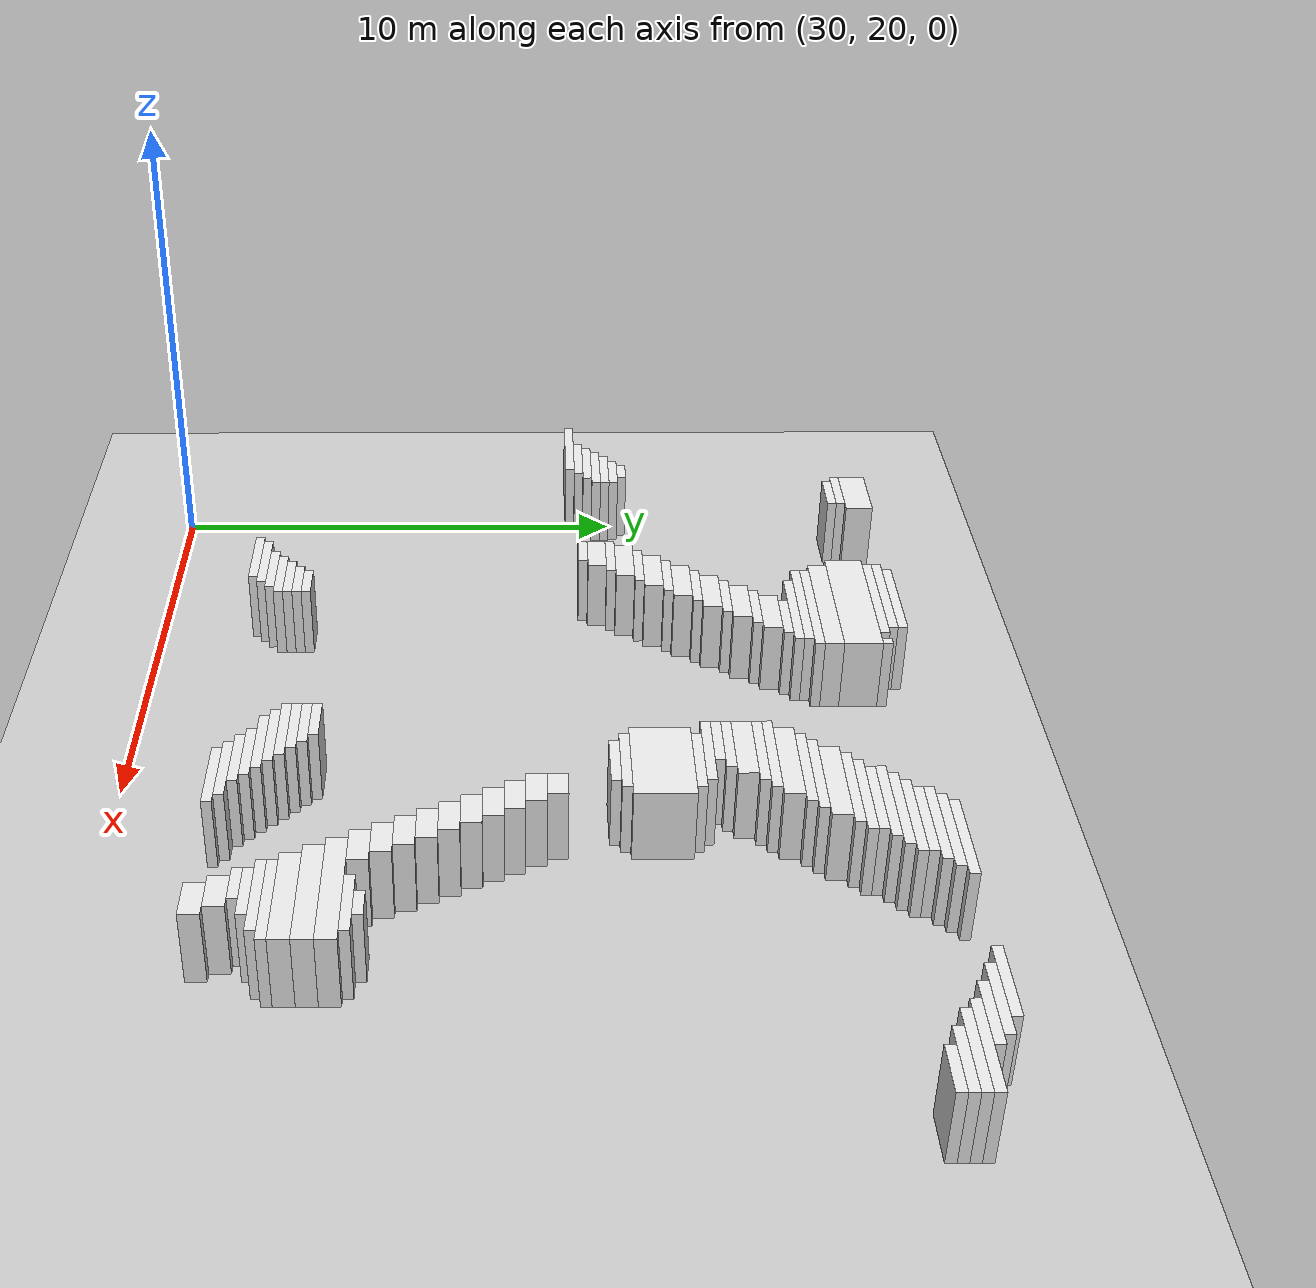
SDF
<sdf version="1.7">
 <world name="default">
  <model name="ground_plane">
   <static>1</static>
   <link name="link">
    <collision name="collision">
     <geometry><plane><normal>0 0 1</normal><size>120 120</size></plane></geometry>
    </collision>
    <visual name="visual">
     <geometry><plane><normal>0 0 1</normal><size>120 120</size></plane></geometry>
     <material>
      <script><uri>file://media/materials/scripts/gazebo.material</uri><name>Gazebo/Grey</name></script>
     </material>
    </visual>
   </link>
  </model>
  <model name="random_complex_03_model">
   <static>1</static>
   <link name="obs_299">
    <pose>35.5000 35.9000 0.8000 0 0 0</pose>
    <collision name="obs_299_col"><geometry><box><size>2.2000 0.2000 1.6000</size></box></geometry></collision>
    <visual name="obs_299_vis">
     <geometry><box><size>2.2000 0.2000 1.6000</size></box></geometry>
     <material>
      <script><uri>file://media/materials/scripts/gazebo.material</uri><name>Gazebo/White</name></script>
     </material>
    </visual>
   </link>
   <link name="obs_300">
    <pose>43.2000 35.9000 0.8000 0 0 0</pose>
    <collision name="obs_300_col"><geometry><box><size>2.0000 0.2000 1.6000</size></box></geometry></collision>
    <visual name="obs_300_vis">
     <geometry><box><size>2.0000 0.2000 1.6000</size></box></geometry>
     <material>
      <script><uri>file://media/materials/scripts/gazebo.material</uri><name>Gazebo/White</name></script>
     </material>
    </visual>
   </link>
   <link name="obs_301">
    <pose>46.8000 35.9000 0.8000 0 0 0</pose>
    <collision name="obs_301_col"><geometry><box><size>1.6000 0.2000 1.6000</size></box></geometry></collision>
    <visual name="obs_301_vis">
     <geometry><box><size>1.6000 0.2000 1.6000</size></box></geometry>
     <material>
      <script><uri>file://media/materials/scripts/gazebo.material</uri><name>Gazebo/White</name></script>
     </material>
    </visual>
   </link>
   <link name="obs_307">
    <pose>35.4000 35.7000 0.8000 0 0 0</pose>
    <collision name="obs_307_col"><geometry><box><size>2.4000 0.2000 1.6000</size></box></geometry></collision>
    <visual name="obs_307_vis">
     <geometry><box><size>2.4000 0.2000 1.6000</size></box></geometry>
     <material>
      <script><uri>file://media/materials/scripts/gazebo.material</uri><name>Gazebo/White</name></script>
     </material>
    </visual>
   </link>
   <link name="obs_308">
    <pose>43.0000 35.7000 0.8000 0 0 0</pose>
    <collision name="obs_308_col"><geometry><box><size>2.0000 0.2000 1.6000</size></box></geometry></collision>
    <visual name="obs_308_vis">
     <geometry><box><size>2.0000 0.2000 1.6000</size></box></geometry>
     <material>
      <script><uri>file://media/materials/scripts/gazebo.material</uri><name>Gazebo/White</name></script>
     </material>
    </visual>
   </link>
   <link name="obs_309">
    <pose>47.2000 35.7000 0.8000 0 0 0</pose>
    <collision name="obs_309_col"><geometry><box><size>1.6000 0.2000 1.6000</size></box></geometry></collision>
    <visual name="obs_309_vis">
     <geometry><box><size>1.6000 0.2000 1.6000</size></box></geometry>
     <material>
      <script><uri>file://media/materials/scripts/gazebo.material</uri><name>Gazebo/White</name></script>
     </material>
    </visual>
   </link>
   <link name="obs_311">
    <pose>31.1000 35.7000 0.8000 0 0 0</pose>
    <collision name="obs_311_col"><geometry><box><size>1.4000 0.6000 1.6000</size></box></geometry></collision>
    <visual name="obs_311_vis">
     <geometry><box><size>1.4000 0.6000 1.6000</size></box></geometry>
     <material>
      <script><uri>file://media/materials/scripts/gazebo.material</uri><name>Gazebo/White</name></script>
     </material>
    </visual>
   </link>
   <link name="obs_314">
    <pose>35.5000 35.5000 0.8000 0 0 0</pose>
    <collision name="obs_314_col"><geometry><box><size>2.6000 0.2000 1.6000</size></box></geometry></collision>
    <visual name="obs_314_vis">
     <geometry><box><size>2.6000 0.2000 1.6000</size></box></geometry>
     <material>
      <script><uri>file://media/materials/scripts/gazebo.material</uri><name>Gazebo/White</name></script>
     </material>
    </visual>
   </link>
   <link name="obs_315">
    <pose>37.1000 35.5000 0.8000 0 0 0</pose>
    <collision name="obs_315_col"><geometry><box><size>0.2000 0.2000 1.6000</size></box></geometry></collision>
    <visual name="obs_315_vis">
     <geometry><box><size>0.2000 0.2000 1.6000</size></box></geometry>
     <material>
      <script><uri>file://media/materials/scripts/gazebo.material</uri><name>Gazebo/White</name></script>
     </material>
    </visual>
   </link>
   <link name="obs_316">
    <pose>42.8000 35.5000 0.8000 0 0 0</pose>
    <collision name="obs_316_col"><geometry><box><size>2.0000 0.2000 1.6000</size></box></geometry></collision>
    <visual name="obs_316_vis">
     <geometry><box><size>2.0000 0.2000 1.6000</size></box></geometry>
     <material>
      <script><uri>file://media/materials/scripts/gazebo.material</uri><name>Gazebo/White</name></script>
     </material>
    </visual>
   </link>
   <link name="obs_317">
    <pose>47.5000 35.5000 0.8000 0 0 0</pose>
    <collision name="obs_317_col"><geometry><box><size>1.4000 0.2000 1.6000</size></box></geometry></collision>
    <visual name="obs_317_vis">
     <geometry><box><size>1.4000 0.2000 1.6000</size></box></geometry>
     <material>
      <script><uri>file://media/materials/scripts/gazebo.material</uri><name>Gazebo/White</name></script>
     </material>
    </visual>
   </link>
   <link name="obs_320">
    <pose>31.0000 35.3000 0.8000 0 0 0</pose>
    <collision name="obs_320_col"><geometry><box><size>1.2000 0.2000 1.6000</size></box></geometry></collision>
    <visual name="obs_320_vis">
     <geometry><box><size>1.2000 0.2000 1.6000</size></box></geometry>
     <material>
      <script><uri>file://media/materials/scripts/gazebo.material</uri><name>Gazebo/White</name></script>
     </material>
    </visual>
   </link>
   <link name="obs_321">
    <pose>42.7000 35.3000 0.8000 0 0 0</pose>
    <collision name="obs_321_col"><geometry><box><size>1.8000 0.2000 1.6000</size></box></geometry></collision>
    <visual name="obs_321_vis">
     <geometry><box><size>1.8000 0.2000 1.6000</size></box></geometry>
     <material>
      <script><uri>file://media/materials/scripts/gazebo.material</uri><name>Gazebo/White</name></script>
     </material>
    </visual>
   </link>
   <link name="obs_322">
    <pose>48.2000 35.3000 0.8000 0 0 0</pose>
    <collision name="obs_322_col"><geometry><box><size>2.0000 0.2000 1.6000</size></box></geometry></collision>
    <visual name="obs_322_vis">
     <geometry><box><size>2.0000 0.2000 1.6000</size></box></geometry>
     <material>
      <script><uri>file://media/materials/scripts/gazebo.material</uri><name>Gazebo/White</name></script>
     </material>
    </visual>
   </link>
   <link name="obs_332">
    <pose>31.1000 35.1000 0.8000 0 0 0</pose>
    <collision name="obs_332_col"><geometry><box><size>1.0000 0.2000 1.6000</size></box></geometry></collision>
    <visual name="obs_332_vis">
     <geometry><box><size>1.0000 0.2000 1.6000</size></box></geometry>
     <material>
      <script><uri>file://media/materials/scripts/gazebo.material</uri><name>Gazebo/White</name></script>
     </material>
    </visual>
   </link>
   <link name="obs_333">
    <pose>42.6000 35.1000 0.8000 0 0 0</pose>
    <collision name="obs_333_col"><geometry><box><size>2.0000 0.2000 1.6000</size></box></geometry></collision>
    <visual name="obs_333_vis">
     <geometry><box><size>2.0000 0.2000 1.6000</size></box></geometry>
     <material>
      <script><uri>file://media/materials/scripts/gazebo.material</uri><name>Gazebo/White</name></script>
     </material>
    </visual>
   </link>
   <link name="obs_334">
    <pose>48.3000 35.1000 0.8000 0 0 0</pose>
    <collision name="obs_334_col"><geometry><box><size>1.8000 0.2000 1.6000</size></box></geometry></collision>
    <visual name="obs_334_vis">
     <geometry><box><size>1.8000 0.2000 1.6000</size></box></geometry>
     <material>
      <script><uri>file://media/materials/scripts/gazebo.material</uri><name>Gazebo/White</name></script>
     </material>
    </visual>
   </link>
   <link name="obs_344">
    <pose>42.4000 34.9000 0.8000 0 0 0</pose>
    <collision name="obs_344_col"><geometry><box><size>2.0000 0.2000 1.6000</size></box></geometry></collision>
    <visual name="obs_344_vis">
     <geometry><box><size>2.0000 0.2000 1.6000</size></box></geometry>
     <material>
      <script><uri>file://media/materials/scripts/gazebo.material</uri><name>Gazebo/White</name></script>
     </material>
    </visual>
   </link>
   <link name="obs_345">
    <pose>48.5000 34.9000 0.8000 0 0 0</pose>
    <collision name="obs_345_col"><geometry><box><size>1.4000 0.2000 1.6000</size></box></geometry></collision>
    <visual name="obs_345_vis">
     <geometry><box><size>1.4000 0.2000 1.6000</size></box></geometry>
     <material>
      <script><uri>file://media/materials/scripts/gazebo.material</uri><name>Gazebo/White</name></script>
     </material>
    </visual>
   </link>
   <link name="obs_346">
    <pose>35.6000 35.0000 0.8000 0 0 0</pose>
    <collision name="obs_346_col"><geometry><box><size>3.2000 0.8000 1.6000</size></box></geometry></collision>
    <visual name="obs_346_vis">
     <geometry><box><size>3.2000 0.8000 1.6000</size></box></geometry>
     <material>
      <script><uri>file://media/materials/scripts/gazebo.material</uri><name>Gazebo/White</name></script>
     </material>
    </visual>
   </link>
   <link name="obs_353">
    <pose>42.2000 34.7000 0.8000 0 0 0</pose>
    <collision name="obs_353_col"><geometry><box><size>2.0000 0.2000 1.6000</size></box></geometry></collision>
    <visual name="obs_353_vis">
     <geometry><box><size>2.0000 0.2000 1.6000</size></box></geometry>
     <material>
      <script><uri>file://media/materials/scripts/gazebo.material</uri><name>Gazebo/White</name></script>
     </material>
    </visual>
   </link>
   <link name="obs_354">
    <pose>48.7000 34.7000 0.8000 0 0 0</pose>
    <collision name="obs_354_col"><geometry><box><size>1.0000 0.2000 1.6000</size></box></geometry></collision>
    <visual name="obs_354_vis">
     <geometry><box><size>1.0000 0.2000 1.6000</size></box></geometry>
     <material>
      <script><uri>file://media/materials/scripts/gazebo.material</uri><name>Gazebo/White</name></script>
     </material>
    </visual>
   </link>
   <link name="obs_363">
    <pose>42.1000 34.5000 0.8000 0 0 0</pose>
    <collision name="obs_363_col"><geometry><box><size>1.8000 0.2000 1.6000</size></box></geometry></collision>
    <visual name="obs_363_vis">
     <geometry><box><size>1.8000 0.2000 1.6000</size></box></geometry>
     <material>
      <script><uri>file://media/materials/scripts/gazebo.material</uri><name>Gazebo/White</name></script>
     </material>
    </visual>
   </link>
   <link name="obs_364">
    <pose>35.7000 34.4000 0.8000 0 0 0</pose>
    <collision name="obs_364_col"><geometry><box><size>3.0000 0.4000 1.6000</size></box></geometry></collision>
    <visual name="obs_364_vis">
     <geometry><box><size>3.0000 0.4000 1.6000</size></box></geometry>
     <material>
      <script><uri>file://media/materials/scripts/gazebo.material</uri><name>Gazebo/White</name></script>
     </material>
    </visual>
   </link>
   <link name="obs_370">
    <pose>42.0000 34.3000 0.8000 0 0 0</pose>
    <collision name="obs_370_col"><geometry><box><size>2.0000 0.2000 1.6000</size></box></geometry></collision>
    <visual name="obs_370_vis">
     <geometry><box><size>2.0000 0.2000 1.6000</size></box></geometry>
     <material>
      <script><uri>file://media/materials/scripts/gazebo.material</uri><name>Gazebo/White</name></script>
     </material>
    </visual>
   </link>
   <link name="obs_378">
    <pose>35.8000 34.1000 0.8000 0 0 0</pose>
    <collision name="obs_378_col"><geometry><box><size>2.8000 0.2000 1.6000</size></box></geometry></collision>
    <visual name="obs_378_vis">
     <geometry><box><size>2.8000 0.2000 1.6000</size></box></geometry>
     <material>
      <script><uri>file://media/materials/scripts/gazebo.material</uri><name>Gazebo/White</name></script>
     </material>
    </visual>
   </link>
   <link name="obs_379">
    <pose>41.8000 34.1000 0.8000 0 0 0</pose>
    <collision name="obs_379_col"><geometry><box><size>2.0000 0.2000 1.6000</size></box></geometry></collision>
    <visual name="obs_379_vis">
     <geometry><box><size>2.0000 0.2000 1.6000</size></box></geometry>
     <material>
      <script><uri>file://media/materials/scripts/gazebo.material</uri><name>Gazebo/White</name></script>
     </material>
    </visual>
   </link>
   <link name="obs_385">
    <pose>35.7000 33.9000 0.8000 0 0 0</pose>
    <collision name="obs_385_col"><geometry><box><size>2.6000 0.2000 1.6000</size></box></geometry></collision>
    <visual name="obs_385_vis">
     <geometry><box><size>2.6000 0.2000 1.6000</size></box></geometry>
     <material>
      <script><uri>file://media/materials/scripts/gazebo.material</uri><name>Gazebo/White</name></script>
     </material>
    </visual>
   </link>
   <link name="obs_388">
    <pose>41.6000 33.8000 0.8000 0 0 0</pose>
    <collision name="obs_388_col"><geometry><box><size>2.0000 0.4000 1.6000</size></box></geometry></collision>
    <visual name="obs_388_vis">
     <geometry><box><size>2.0000 0.4000 1.6000</size></box></geometry>
     <material>
      <script><uri>file://media/materials/scripts/gazebo.material</uri><name>Gazebo/White</name></script>
     </material>
    </visual>
   </link>
   <link name="obs_394">
    <pose>35.9000 33.7000 0.8000 0 0 0</pose>
    <collision name="obs_394_col"><geometry><box><size>2.2000 0.2000 1.6000</size></box></geometry></collision>
    <visual name="obs_394_vis">
     <geometry><box><size>2.2000 0.2000 1.6000</size></box></geometry>
     <material>
      <script><uri>file://media/materials/scripts/gazebo.material</uri><name>Gazebo/White</name></script>
     </material>
    </visual>
   </link>
   <link name="obs_402">
    <pose>36.2000 33.5000 0.8000 0 0 0</pose>
    <collision name="obs_402_col"><geometry><box><size>1.2000 0.2000 1.6000</size></box></geometry></collision>
    <visual name="obs_402_vis">
     <geometry><box><size>1.2000 0.2000 1.6000</size></box></geometry>
     <material>
      <script><uri>file://media/materials/scripts/gazebo.material</uri><name>Gazebo/White</name></script>
     </material>
    </visual>
   </link>
   <link name="obs_403">
    <pose>41.4000 33.5000 0.8000 0 0 0</pose>
    <collision name="obs_403_col"><geometry><box><size>2.0000 0.2000 1.6000</size></box></geometry></collision>
    <visual name="obs_403_vis">
     <geometry><box><size>2.0000 0.2000 1.6000</size></box></geometry>
     <material>
      <script><uri>file://media/materials/scripts/gazebo.material</uri><name>Gazebo/White</name></script>
     </material>
    </visual>
   </link>
   <link name="obs_410">
    <pose>41.2000 33.3000 0.8000 0 0 0</pose>
    <collision name="obs_410_col"><geometry><box><size>2.0000 0.2000 1.6000</size></box></geometry></collision>
    <visual name="obs_410_vis">
     <geometry><box><size>2.0000 0.2000 1.6000</size></box></geometry>
     <material>
      <script><uri>file://media/materials/scripts/gazebo.material</uri><name>Gazebo/White</name></script>
     </material>
    </visual>
   </link>
   <link name="obs_413">
    <pose>36.0000 33.2000 0.8000 0 0 0</pose>
    <collision name="obs_413_col"><geometry><box><size>1.2000 0.4000 1.6000</size></box></geometry></collision>
    <visual name="obs_413_vis">
     <geometry><box><size>1.2000 0.4000 1.6000</size></box></geometry>
     <material>
      <script><uri>file://media/materials/scripts/gazebo.material</uri><name>Gazebo/White</name></script>
     </material>
    </visual>
   </link>
   <link name="obs_420">
    <pose>41.0000 33.0000 0.8000 0 0 0</pose>
    <collision name="obs_420_col"><geometry><box><size>2.0000 0.4000 1.6000</size></box></geometry></collision>
    <visual name="obs_420_vis">
     <geometry><box><size>2.0000 0.4000 1.6000</size></box></geometry>
     <material>
      <script><uri>file://media/materials/scripts/gazebo.material</uri><name>Gazebo/White</name></script>
     </material>
    </visual>
   </link>
   <link name="obs_425">
    <pose>35.8000 32.9000 0.8000 0 0 0</pose>
    <collision name="obs_425_col"><geometry><box><size>1.2000 0.2000 1.6000</size></box></geometry></collision>
    <visual name="obs_425_vis">
     <geometry><box><size>1.2000 0.2000 1.6000</size></box></geometry>
     <material>
      <script><uri>file://media/materials/scripts/gazebo.material</uri><name>Gazebo/White</name></script>
     </material>
    </visual>
   </link>
   <link name="obs_435">
    <pose>40.8000 32.7000 0.8000 0 0 0</pose>
    <collision name="obs_435_col"><geometry><box><size>2.0000 0.2000 1.6000</size></box></geometry></collision>
    <visual name="obs_435_vis">
     <geometry><box><size>2.0000 0.2000 1.6000</size></box></geometry>
     <material>
      <script><uri>file://media/materials/scripts/gazebo.material</uri><name>Gazebo/White</name></script>
     </material>
    </visual>
   </link>
   <link name="obs_437">
    <pose>35.6000 32.6000 0.8000 0 0 0</pose>
    <collision name="obs_437_col"><geometry><box><size>1.2000 0.4000 1.6000</size></box></geometry></collision>
    <visual name="obs_437_vis">
     <geometry><box><size>1.2000 0.4000 1.6000</size></box></geometry>
     <material>
      <script><uri>file://media/materials/scripts/gazebo.material</uri><name>Gazebo/White</name></script>
     </material>
    </visual>
   </link>
   <link name="obs_444">
    <pose>40.7000 32.5000 0.8000 0 0 0</pose>
    <collision name="obs_444_col"><geometry><box><size>1.8000 0.2000 1.6000</size></box></geometry></collision>
    <visual name="obs_444_vis">
     <geometry><box><size>1.8000 0.2000 1.6000</size></box></geometry>
     <material>
      <script><uri>file://media/materials/scripts/gazebo.material</uri><name>Gazebo/White</name></script>
     </material>
    </visual>
   </link>
   <link name="obs_452">
    <pose>35.4000 32.3000 0.8000 0 0 0</pose>
    <collision name="obs_452_col"><geometry><box><size>1.2000 0.2000 1.6000</size></box></geometry></collision>
    <visual name="obs_452_vis">
     <geometry><box><size>1.2000 0.2000 1.6000</size></box></geometry>
     <material>
      <script><uri>file://media/materials/scripts/gazebo.material</uri><name>Gazebo/White</name></script>
     </material>
    </visual>
   </link>
   <link name="obs_454">
    <pose>40.6000 32.2000 0.8000 0 0 0</pose>
    <collision name="obs_454_col"><geometry><box><size>1.6000 0.4000 1.6000</size></box></geometry></collision>
    <visual name="obs_454_vis">
     <geometry><box><size>1.6000 0.4000 1.6000</size></box></geometry>
     <material>
      <script><uri>file://media/materials/scripts/gazebo.material</uri><name>Gazebo/White</name></script>
     </material>
    </visual>
   </link>
   <link name="obs_462">
    <pose>35.2000 32.0000 0.8000 0 0 0</pose>
    <collision name="obs_462_col"><geometry><box><size>1.2000 0.4000 1.6000</size></box></geometry></collision>
    <visual name="obs_462_vis">
     <geometry><box><size>1.2000 0.4000 1.6000</size></box></geometry>
     <material>
      <script><uri>file://media/materials/scripts/gazebo.material</uri><name>Gazebo/White</name></script>
     </material>
    </visual>
   </link>
   <link name="obs_470">
    <pose>40.5000 31.9000 0.8000 0 0 0</pose>
    <collision name="obs_470_col"><geometry><box><size>1.4000 0.2000 1.6000</size></box></geometry></collision>
    <visual name="obs_470_vis">
     <geometry><box><size>1.4000 0.2000 1.6000</size></box></geometry>
     <material>
      <script><uri>file://media/materials/scripts/gazebo.material</uri><name>Gazebo/White</name></script>
     </material>
    </visual>
   </link>
   <link name="obs_478">
    <pose>35.0000 31.7000 0.8000 0 0 0</pose>
    <collision name="obs_478_col"><geometry><box><size>1.2000 0.2000 1.6000</size></box></geometry></collision>
    <visual name="obs_478_vis">
     <geometry><box><size>1.2000 0.2000 1.6000</size></box></geometry>
     <material>
      <script><uri>file://media/materials/scripts/gazebo.material</uri><name>Gazebo/White</name></script>
     </material>
    </visual>
   </link>
   <link name="obs_479">
    <pose>40.4000 31.7000 0.8000 0 0 0</pose>
    <collision name="obs_479_col"><geometry><box><size>1.2000 0.2000 1.6000</size></box></geometry></collision>
    <visual name="obs_479_vis">
     <geometry><box><size>1.2000 0.2000 1.6000</size></box></geometry>
     <material>
      <script><uri>file://media/materials/scripts/gazebo.material</uri><name>Gazebo/White</name></script>
     </material>
    </visual>
   </link>
   <link name="obs_486">
    <pose>40.7000 31.5000 0.8000 0 0 0</pose>
    <collision name="obs_486_col"><geometry><box><size>1.8000 0.2000 1.6000</size></box></geometry></collision>
    <visual name="obs_486_vis">
     <geometry><box><size>1.8000 0.2000 1.6000</size></box></geometry>
     <material>
      <script><uri>file://media/materials/scripts/gazebo.material</uri><name>Gazebo/White</name></script>
     </material>
    </visual>
   </link>
   <link name="obs_489">
    <pose>34.8000 31.4000 0.8000 0 0 0</pose>
    <collision name="obs_489_col"><geometry><box><size>1.2000 0.4000 1.6000</size></box></geometry></collision>
    <visual name="obs_489_vis">
     <geometry><box><size>1.2000 0.4000 1.6000</size></box></geometry>
     <material>
      <script><uri>file://media/materials/scripts/gazebo.material</uri><name>Gazebo/White</name></script>
     </material>
    </visual>
   </link>
   <link name="obs_493">
    <pose>41.0000 31.3000 0.8000 0 0 0</pose>
    <collision name="obs_493_col"><geometry><box><size>1.6000 0.2000 1.6000</size></box></geometry></collision>
    <visual name="obs_493_vis">
     <geometry><box><size>1.6000 0.2000 1.6000</size></box></geometry>
     <material>
      <script><uri>file://media/materials/scripts/gazebo.material</uri><name>Gazebo/White</name></script>
     </material>
    </visual>
   </link>
   <link name="obs_498">
    <pose>34.6000 31.1000 0.8000 0 0 0</pose>
    <collision name="obs_498_col"><geometry><box><size>1.2000 0.2000 1.6000</size></box></geometry></collision>
    <visual name="obs_498_vis">
     <geometry><box><size>1.2000 0.2000 1.6000</size></box></geometry>
     <material>
      <script><uri>file://media/materials/scripts/gazebo.material</uri><name>Gazebo/White</name></script>
     </material>
    </visual>
   </link>
   <link name="obs_507">
    <pose>34.4000 30.8000 0.8000 0 0 0</pose>
    <collision name="obs_507_col"><geometry><box><size>1.2000 0.4000 1.6000</size></box></geometry></collision>
    <visual name="obs_507_vis">
     <geometry><box><size>1.2000 0.4000 1.6000</size></box></geometry>
     <material>
      <script><uri>file://media/materials/scripts/gazebo.material</uri><name>Gazebo/White</name></script>
     </material>
    </visual>
   </link>
   <link name="obs_521">
    <pose>34.2000 30.5000 0.8000 0 0 0</pose>
    <collision name="obs_521_col"><geometry><box><size>1.2000 0.2000 1.6000</size></box></geometry></collision>
    <visual name="obs_521_vis">
     <geometry><box><size>1.2000 0.2000 1.6000</size></box></geometry>
     <material>
      <script><uri>file://media/materials/scripts/gazebo.material</uri><name>Gazebo/White</name></script>
     </material>
    </visual>
   </link>
   <link name="obs_528">
    <pose>30.1000 30.3000 0.8000 0 0 0</pose>
    <collision name="obs_528_col"><geometry><box><size>0.6000 0.2000 1.6000</size></box></geometry></collision>
    <visual name="obs_528_vis">
     <geometry><box><size>0.6000 0.2000 1.6000</size></box></geometry>
     <material>
      <script><uri>file://media/materials/scripts/gazebo.material</uri><name>Gazebo/White</name></script>
     </material>
    </visual>
   </link>
   <link name="obs_529">
    <pose>41.0000 30.6000 0.8000 0 0 0</pose>
    <collision name="obs_529_col"><geometry><box><size>2.0000 1.2000 1.6000</size></box></geometry></collision>
    <visual name="obs_529_vis">
     <geometry><box><size>2.0000 1.2000 1.6000</size></box></geometry>
     <material>
      <script><uri>file://media/materials/scripts/gazebo.material</uri><name>Gazebo/White</name></script>
     </material>
    </visual>
   </link>
   <link name="obs_531">
    <pose>34.0000 30.2000 0.8000 0 0 0</pose>
    <collision name="obs_531_col"><geometry><box><size>1.2000 0.4000 1.6000</size></box></geometry></collision>
    <visual name="obs_531_vis">
     <geometry><box><size>1.2000 0.4000 1.6000</size></box></geometry>
     <material>
      <script><uri>file://media/materials/scripts/gazebo.material</uri><name>Gazebo/White</name></script>
     </material>
    </visual>
   </link>
   <link name="obs_538">
    <pose>30.1000 30.1000 0.8000 0 0 0</pose>
    <collision name="obs_538_col"><geometry><box><size>1.0000 0.2000 1.6000</size></box></geometry></collision>
    <visual name="obs_538_vis">
     <geometry><box><size>1.0000 0.2000 1.6000</size></box></geometry>
     <material>
      <script><uri>file://media/materials/scripts/gazebo.material</uri><name>Gazebo/White</name></script>
     </material>
    </visual>
   </link>
   <link name="obs_544">
    <pose>30.0000 29.9000 0.8000 0 0 0</pose>
    <collision name="obs_544_col"><geometry><box><size>1.2000 0.2000 1.6000</size></box></geometry></collision>
    <visual name="obs_544_vis">
     <geometry><box><size>1.2000 0.2000 1.6000</size></box></geometry>
     <material>
      <script><uri>file://media/materials/scripts/gazebo.material</uri><name>Gazebo/White</name></script>
     </material>
    </visual>
   </link>
   <link name="obs_545">
    <pose>33.8000 29.9000 0.8000 0 0 0</pose>
    <collision name="obs_545_col"><geometry><box><size>1.2000 0.2000 1.6000</size></box></geometry></collision>
    <visual name="obs_545_vis">
     <geometry><box><size>1.2000 0.2000 1.6000</size></box></geometry>
     <material>
      <script><uri>file://media/materials/scripts/gazebo.material</uri><name>Gazebo/White</name></script>
     </material>
    </visual>
   </link>
   <link name="obs_546">
    <pose>41.0000 29.9000 0.8000 0 0 0</pose>
    <collision name="obs_546_col"><geometry><box><size>1.6000 0.2000 1.6000</size></box></geometry></collision>
    <visual name="obs_546_vis">
     <geometry><box><size>1.6000 0.2000 1.6000</size></box></geometry>
     <material>
      <script><uri>file://media/materials/scripts/gazebo.material</uri><name>Gazebo/White</name></script>
     </material>
    </visual>
   </link>
   <link name="obs_554">
    <pose>29.9000 29.7000 0.8000 0 0 0</pose>
    <collision name="obs_554_col"><geometry><box><size>1.4000 0.2000 1.6000</size></box></geometry></collision>
    <visual name="obs_554_vis">
     <geometry><box><size>1.4000 0.2000 1.6000</size></box></geometry>
     <material>
      <script><uri>file://media/materials/scripts/gazebo.material</uri><name>Gazebo/White</name></script>
     </material>
    </visual>
   </link>
   <link name="obs_555">
    <pose>41.0000 29.7000 0.8000 0 0 0</pose>
    <collision name="obs_555_col"><geometry><box><size>1.2000 0.2000 1.6000</size></box></geometry></collision>
    <visual name="obs_555_vis">
     <geometry><box><size>1.2000 0.2000 1.6000</size></box></geometry>
     <material>
      <script><uri>file://media/materials/scripts/gazebo.material</uri><name>Gazebo/White</name></script>
     </material>
    </visual>
   </link>
   <link name="obs_556">
    <pose>33.7000 29.6000 0.8000 0 0 0</pose>
    <collision name="obs_556_col"><geometry><box><size>1.0000 0.4000 1.6000</size></box></geometry></collision>
    <visual name="obs_556_vis">
     <geometry><box><size>1.0000 0.4000 1.6000</size></box></geometry>
     <material>
      <script><uri>file://media/materials/scripts/gazebo.material</uri><name>Gazebo/White</name></script>
     </material>
    </visual>
   </link>
   <link name="obs_564">
    <pose>29.7000 29.5000 0.8000 0 0 0</pose>
    <collision name="obs_564_col"><geometry><box><size>1.4000 0.2000 1.6000</size></box></geometry></collision>
    <visual name="obs_564_vis">
     <geometry><box><size>1.4000 0.2000 1.6000</size></box></geometry>
     <material>
      <script><uri>file://media/materials/scripts/gazebo.material</uri><name>Gazebo/White</name></script>
     </material>
    </visual>
   </link>
   <link name="obs_570">
    <pose>29.5000 29.3000 0.8000 0 0 0</pose>
    <collision name="obs_570_col"><geometry><box><size>1.4000 0.2000 1.6000</size></box></geometry></collision>
    <visual name="obs_570_vis">
     <geometry><box><size>1.4000 0.2000 1.6000</size></box></geometry>
     <material>
      <script><uri>file://media/materials/scripts/gazebo.material</uri><name>Gazebo/White</name></script>
     </material>
    </visual>
   </link>
   <link name="obs_571">
    <pose>33.6000 29.3000 0.8000 0 0 0</pose>
    <collision name="obs_571_col"><geometry><box><size>0.8000 0.2000 1.6000</size></box></geometry></collision>
    <visual name="obs_571_vis">
     <geometry><box><size>0.8000 0.2000 1.6000</size></box></geometry>
     <material>
      <script><uri>file://media/materials/scripts/gazebo.material</uri><name>Gazebo/White</name></script>
     </material>
    </visual>
   </link>
   <link name="obs_579">
    <pose>29.0000 29.1000 0.8000 0 0 0</pose>
    <collision name="obs_579_col"><geometry><box><size>2.0000 0.2000 1.6000</size></box></geometry></collision>
    <visual name="obs_579_vis">
     <geometry><box><size>2.0000 0.2000 1.6000</size></box></geometry>
     <material>
      <script><uri>file://media/materials/scripts/gazebo.material</uri><name>Gazebo/White</name></script>
     </material>
    </visual>
   </link>
   <link name="obs_595">
    <pose>41.7000 28.6000 0.8000 0 0 0</pose>
    <collision name="obs_595_col"><geometry><box><size>0.6000 0.4000 1.6000</size></box></geometry></collision>
    <visual name="obs_595_vis">
     <geometry><box><size>0.6000 0.4000 1.6000</size></box></geometry>
     <material>
      <script><uri>file://media/materials/scripts/gazebo.material</uri><name>Gazebo/White</name></script>
     </material>
    </visual>
   </link>
   <link name="obs_607">
    <pose>41.8000 28.2000 0.8000 0 0 0</pose>
    <collision name="obs_607_col"><geometry><box><size>0.8000 0.4000 1.6000</size></box></geometry></collision>
    <visual name="obs_607_vis">
     <geometry><box><size>0.8000 0.4000 1.6000</size></box></geometry>
     <material>
      <script><uri>file://media/materials/scripts/gazebo.material</uri><name>Gazebo/White</name></script>
     </material>
    </visual>
   </link>
   <link name="obs_623">
    <pose>42.0000 27.8000 0.8000 0 0 0</pose>
    <collision name="obs_623_col"><geometry><box><size>0.8000 0.4000 1.6000</size></box></geometry></collision>
    <visual name="obs_623_vis">
     <geometry><box><size>0.8000 0.4000 1.6000</size></box></geometry>
     <material>
      <script><uri>file://media/materials/scripts/gazebo.material</uri><name>Gazebo/White</name></script>
     </material>
    </visual>
   </link>
   <link name="obs_635">
    <pose>42.2000 27.4000 0.8000 0 0 0</pose>
    <collision name="obs_635_col"><geometry><box><size>0.8000 0.4000 1.6000</size></box></geometry></collision>
    <visual name="obs_635_vis">
     <geometry><box><size>0.8000 0.4000 1.6000</size></box></geometry>
     <material>
      <script><uri>file://media/materials/scripts/gazebo.material</uri><name>Gazebo/White</name></script>
     </material>
    </visual>
   </link>
   <link name="obs_652">
    <pose>42.4000 27.0000 0.8000 0 0 0</pose>
    <collision name="obs_652_col"><geometry><box><size>0.8000 0.4000 1.6000</size></box></geometry></collision>
    <visual name="obs_652_vis">
     <geometry><box><size>0.8000 0.4000 1.6000</size></box></geometry>
     <material>
      <script><uri>file://media/materials/scripts/gazebo.material</uri><name>Gazebo/White</name></script>
     </material>
    </visual>
   </link>
   <link name="obs_672">
    <pose>42.6000 26.6000 0.8000 0 0 0</pose>
    <collision name="obs_672_col"><geometry><box><size>0.8000 0.4000 1.6000</size></box></geometry></collision>
    <visual name="obs_672_vis">
     <geometry><box><size>0.8000 0.4000 1.6000</size></box></geometry>
     <material>
      <script><uri>file://media/materials/scripts/gazebo.material</uri><name>Gazebo/White</name></script>
     </material>
    </visual>
   </link>
   <link name="obs_686">
    <pose>42.8000 26.2000 0.8000 0 0 0</pose>
    <collision name="obs_686_col"><geometry><box><size>0.8000 0.4000 1.6000</size></box></geometry></collision>
    <visual name="obs_686_vis">
     <geometry><box><size>0.8000 0.4000 1.6000</size></box></geometry>
     <material>
      <script><uri>file://media/materials/scripts/gazebo.material</uri><name>Gazebo/White</name></script>
     </material>
    </visual>
   </link>
   <link name="obs_701">
    <pose>43.0000 25.8000 0.8000 0 0 0</pose>
    <collision name="obs_701_col"><geometry><box><size>0.8000 0.4000 1.6000</size></box></geometry></collision>
    <visual name="obs_701_vis">
     <geometry><box><size>0.8000 0.4000 1.6000</size></box></geometry>
     <material>
      <script><uri>file://media/materials/scripts/gazebo.material</uri><name>Gazebo/White</name></script>
     </material>
    </visual>
   </link>
   <link name="obs_716">
    <pose>43.2000 25.4000 0.8000 0 0 0</pose>
    <collision name="obs_716_col"><geometry><box><size>0.8000 0.4000 1.6000</size></box></geometry></collision>
    <visual name="obs_716_vis">
     <geometry><box><size>0.8000 0.4000 1.6000</size></box></geometry>
     <material>
      <script><uri>file://media/materials/scripts/gazebo.material</uri><name>Gazebo/White</name></script>
     </material>
    </visual>
   </link>
   <link name="obs_727">
    <pose>44.9000 25.1000 0.8000 0 0 0</pose>
    <collision name="obs_727_col"><geometry><box><size>0.6000 0.2000 1.6000</size></box></geometry></collision>
    <visual name="obs_727_vis">
     <geometry><box><size>0.6000 0.2000 1.6000</size></box></geometry>
     <material>
      <script><uri>file://media/materials/scripts/gazebo.material</uri><name>Gazebo/White</name></script>
     </material>
    </visual>
   </link>
   <link name="obs_733">
    <pose>43.4000 25.0000 0.8000 0 0 0</pose>
    <collision name="obs_733_col"><geometry><box><size>0.8000 0.4000 1.6000</size></box></geometry></collision>
    <visual name="obs_733_vis">
     <geometry><box><size>0.8000 0.4000 1.6000</size></box></geometry>
     <material>
      <script><uri>file://media/materials/scripts/gazebo.material</uri><name>Gazebo/White</name></script>
     </material>
    </visual>
   </link>
   <link name="obs_737">
    <pose>44.9000 24.9000 0.8000 0 0 0</pose>
    <collision name="obs_737_col"><geometry><box><size>1.4000 0.2000 1.6000</size></box></geometry></collision>
    <visual name="obs_737_vis">
     <geometry><box><size>1.4000 0.2000 1.6000</size></box></geometry>
     <material>
      <script><uri>file://media/materials/scripts/gazebo.material</uri><name>Gazebo/White</name></script>
     </material>
    </visual>
   </link>
   <link name="obs_747">
    <pose>44.5000 24.6000 0.8000 0 0 0</pose>
    <collision name="obs_747_col"><geometry><box><size>2.6000 0.4000 1.6000</size></box></geometry></collision>
    <visual name="obs_747_vis">
     <geometry><box><size>2.6000 0.4000 1.6000</size></box></geometry>
     <material>
      <script><uri>file://media/materials/scripts/gazebo.material</uri><name>Gazebo/White</name></script>
     </material>
    </visual>
   </link>
   <link name="obs_760">
    <pose>44.6000 24.2000 0.8000 0 0 0</pose>
    <collision name="obs_760_col"><geometry><box><size>2.4000 0.4000 1.6000</size></box></geometry></collision>
    <visual name="obs_760_vis">
     <geometry><box><size>2.4000 0.4000 1.6000</size></box></geometry>
     <material>
      <script><uri>file://media/materials/scripts/gazebo.material</uri><name>Gazebo/White</name></script>
     </material>
    </visual>
   </link>
   <link name="obs_773">
    <pose>39.7000 23.9000 0.8000 0 0 0</pose>
    <collision name="obs_773_col"><geometry><box><size>1.0000 0.2000 1.6000</size></box></geometry></collision>
    <visual name="obs_773_vis">
     <geometry><box><size>1.0000 0.2000 1.6000</size></box></geometry>
     <material>
      <script><uri>file://media/materials/scripts/gazebo.material</uri><name>Gazebo/White</name></script>
     </material>
    </visual>
   </link>
   <link name="obs_777">
    <pose>44.7000 23.8000 0.8000 0 0 0</pose>
    <collision name="obs_777_col"><geometry><box><size>2.2000 0.4000 1.6000</size></box></geometry></collision>
    <visual name="obs_777_vis">
     <geometry><box><size>2.2000 0.4000 1.6000</size></box></geometry>
     <material>
      <script><uri>file://media/materials/scripts/gazebo.material</uri><name>Gazebo/White</name></script>
     </material>
    </visual>
   </link>
   <link name="obs_781">
    <pose>39.8000 23.7000 0.8000 0 0 0</pose>
    <collision name="obs_781_col"><geometry><box><size>1.2000 0.2000 1.6000</size></box></geometry></collision>
    <visual name="obs_781_vis">
     <geometry><box><size>1.2000 0.2000 1.6000</size></box></geometry>
     <material>
      <script><uri>file://media/materials/scripts/gazebo.material</uri><name>Gazebo/White</name></script>
     </material>
    </visual>
   </link>
   <link name="obs_786">
    <pose>39.9000 23.5000 0.8000 0 0 0</pose>
    <collision name="obs_786_col"><geometry><box><size>1.4000 0.2000 1.6000</size></box></geometry></collision>
    <visual name="obs_786_vis">
     <geometry><box><size>1.4000 0.2000 1.6000</size></box></geometry>
     <material>
      <script><uri>file://media/materials/scripts/gazebo.material</uri><name>Gazebo/White</name></script>
     </material>
    </visual>
   </link>
   <link name="obs_787">
    <pose>44.8000 23.5000 0.8000 0 0 0</pose>
    <collision name="obs_787_col"><geometry><box><size>2.0000 0.2000 1.6000</size></box></geometry></collision>
    <visual name="obs_787_vis">
     <geometry><box><size>2.0000 0.2000 1.6000</size></box></geometry>
     <material>
      <script><uri>file://media/materials/scripts/gazebo.material</uri><name>Gazebo/White</name></script>
     </material>
    </visual>
   </link>
   <link name="obs_794">
    <pose>34.8000 23.3000 0.8000 0 0 0</pose>
    <collision name="obs_794_col"><geometry><box><size>0.8000 0.2000 1.6000</size></box></geometry></collision>
    <visual name="obs_794_vis">
     <geometry><box><size>0.8000 0.2000 1.6000</size></box></geometry>
     <material>
      <script><uri>file://media/materials/scripts/gazebo.material</uri><name>Gazebo/White</name></script>
     </material>
    </visual>
   </link>
   <link name="obs_795">
    <pose>40.0000 23.3000 0.8000 0 0 0</pose>
    <collision name="obs_795_col"><geometry><box><size>1.6000 0.2000 1.6000</size></box></geometry></collision>
    <visual name="obs_795_vis">
     <geometry><box><size>1.6000 0.2000 1.6000</size></box></geometry>
     <material>
      <script><uri>file://media/materials/scripts/gazebo.material</uri><name>Gazebo/White</name></script>
     </material>
    </visual>
   </link>
   <link name="obs_796">
    <pose>44.7000 23.3000 0.8000 0 0 0</pose>
    <collision name="obs_796_col"><geometry><box><size>1.8000 0.2000 1.6000</size></box></geometry></collision>
    <visual name="obs_796_vis">
     <geometry><box><size>1.8000 0.2000 1.6000</size></box></geometry>
     <material>
      <script><uri>file://media/materials/scripts/gazebo.material</uri><name>Gazebo/White</name></script>
     </material>
    </visual>
   </link>
   <link name="obs_803">
    <pose>34.7000 23.1000 0.8000 0 0 0</pose>
    <collision name="obs_803_col"><geometry><box><size>1.0000 0.2000 1.6000</size></box></geometry></collision>
    <visual name="obs_803_vis">
     <geometry><box><size>1.0000 0.2000 1.6000</size></box></geometry>
     <material>
      <script><uri>file://media/materials/scripts/gazebo.material</uri><name>Gazebo/White</name></script>
     </material>
    </visual>
   </link>
   <link name="obs_804">
    <pose>40.2000 23.1000 0.8000 0 0 0</pose>
    <collision name="obs_804_col"><geometry><box><size>1.6000 0.2000 1.6000</size></box></geometry></collision>
    <visual name="obs_804_vis">
     <geometry><box><size>1.6000 0.2000 1.6000</size></box></geometry>
     <material>
      <script><uri>file://media/materials/scripts/gazebo.material</uri><name>Gazebo/White</name></script>
     </material>
    </visual>
   </link>
   <link name="obs_805">
    <pose>44.6000 23.1000 0.8000 0 0 0</pose>
    <collision name="obs_805_col"><geometry><box><size>1.2000 0.2000 1.6000</size></box></geometry></collision>
    <visual name="obs_805_vis">
     <geometry><box><size>1.2000 0.2000 1.6000</size></box></geometry>
     <material>
      <script><uri>file://media/materials/scripts/gazebo.material</uri><name>Gazebo/White</name></script>
     </material>
    </visual>
   </link>
   <link name="obs_812">
    <pose>34.6000 22.9000 0.8000 0 0 0</pose>
    <collision name="obs_812_col"><geometry><box><size>1.2000 0.2000 1.6000</size></box></geometry></collision>
    <visual name="obs_812_vis">
     <geometry><box><size>1.2000 0.2000 1.6000</size></box></geometry>
     <material>
      <script><uri>file://media/materials/scripts/gazebo.material</uri><name>Gazebo/White</name></script>
     </material>
    </visual>
   </link>
   <link name="obs_813">
    <pose>40.4000 22.9000 0.8000 0 0 0</pose>
    <collision name="obs_813_col"><geometry><box><size>1.6000 0.2000 1.6000</size></box></geometry></collision>
    <visual name="obs_813_vis">
     <geometry><box><size>1.6000 0.2000 1.6000</size></box></geometry>
     <material>
      <script><uri>file://media/materials/scripts/gazebo.material</uri><name>Gazebo/White</name></script>
     </material>
    </visual>
   </link>
   <link name="obs_814">
    <pose>44.4000 22.9000 0.8000 0 0 0</pose>
    <collision name="obs_814_col"><geometry><box><size>0.8000 0.2000 1.6000</size></box></geometry></collision>
    <visual name="obs_814_vis">
     <geometry><box><size>0.8000 0.2000 1.6000</size></box></geometry>
     <material>
      <script><uri>file://media/materials/scripts/gazebo.material</uri><name>Gazebo/White</name></script>
     </material>
    </visual>
   </link>
   <link name="obs_824">
    <pose>34.5000 22.7000 0.8000 0 0 0</pose>
    <collision name="obs_824_col"><geometry><box><size>1.4000 0.2000 1.6000</size></box></geometry></collision>
    <visual name="obs_824_vis">
     <geometry><box><size>1.4000 0.2000 1.6000</size></box></geometry>
     <material>
      <script><uri>file://media/materials/scripts/gazebo.material</uri><name>Gazebo/White</name></script>
     </material>
    </visual>
   </link>
   <link name="obs_825">
    <pose>40.7000 22.7000 0.8000 0 0 0</pose>
    <collision name="obs_825_col"><geometry><box><size>1.4000 0.2000 1.6000</size></box></geometry></collision>
    <visual name="obs_825_vis">
     <geometry><box><size>1.4000 0.2000 1.6000</size></box></geometry>
     <material>
      <script><uri>file://media/materials/scripts/gazebo.material</uri><name>Gazebo/White</name></script>
     </material>
    </visual>
   </link>
   <link name="obs_827">
    <pose>44.6000 22.6000 0.8000 0 0 0</pose>
    <collision name="obs_827_col"><geometry><box><size>0.8000 0.4000 1.6000</size></box></geometry></collision>
    <visual name="obs_827_vis">
     <geometry><box><size>0.8000 0.4000 1.6000</size></box></geometry>
     <material>
      <script><uri>file://media/materials/scripts/gazebo.material</uri><name>Gazebo/White</name></script>
     </material>
    </visual>
   </link>
   <link name="obs_832">
    <pose>34.3000 22.5000 0.8000 0 0 0</pose>
    <collision name="obs_832_col"><geometry><box><size>1.4000 0.2000 1.6000</size></box></geometry></collision>
    <visual name="obs_832_vis">
     <geometry><box><size>1.4000 0.2000 1.6000</size></box></geometry>
     <material>
      <script><uri>file://media/materials/scripts/gazebo.material</uri><name>Gazebo/White</name></script>
     </material>
    </visual>
   </link>
   <link name="obs_833">
    <pose>40.9000 22.5000 0.8000 0 0 0</pose>
    <collision name="obs_833_col"><geometry><box><size>1.4000 0.2000 1.6000</size></box></geometry></collision>
    <visual name="obs_833_vis">
     <geometry><box><size>1.4000 0.2000 1.6000</size></box></geometry>
     <material>
      <script><uri>file://media/materials/scripts/gazebo.material</uri><name>Gazebo/White</name></script>
     </material>
    </visual>
   </link>
   <link name="obs_842">
    <pose>34.0000 22.3000 0.8000 0 0 0</pose>
    <collision name="obs_842_col"><geometry><box><size>1.6000 0.2000 1.6000</size></box></geometry></collision>
    <visual name="obs_842_vis">
     <geometry><box><size>1.6000 0.2000 1.6000</size></box></geometry>
     <material>
      <script><uri>file://media/materials/scripts/gazebo.material</uri><name>Gazebo/White</name></script>
     </material>
    </visual>
   </link>
   <link name="obs_843">
    <pose>41.2000 22.3000 0.8000 0 0 0</pose>
    <collision name="obs_843_col"><geometry><box><size>1.6000 0.2000 1.6000</size></box></geometry></collision>
    <visual name="obs_843_vis">
     <geometry><box><size>1.6000 0.2000 1.6000</size></box></geometry>
     <material>
      <script><uri>file://media/materials/scripts/gazebo.material</uri><name>Gazebo/White</name></script>
     </material>
    </visual>
   </link>
   <link name="obs_845">
    <pose>44.8000 22.2000 0.8000 0 0 0</pose>
    <collision name="obs_845_col"><geometry><box><size>0.8000 0.4000 1.6000</size></box></geometry></collision>
    <visual name="obs_845_vis">
     <geometry><box><size>0.8000 0.4000 1.6000</size></box></geometry>
     <material>
      <script><uri>file://media/materials/scripts/gazebo.material</uri><name>Gazebo/White</name></script>
     </material>
    </visual>
   </link>
   <link name="obs_850">
    <pose>33.8000 22.1000 0.8000 0 0 0</pose>
    <collision name="obs_850_col"><geometry><box><size>1.6000 0.2000 1.6000</size></box></geometry></collision>
    <visual name="obs_850_vis">
     <geometry><box><size>1.6000 0.2000 1.6000</size></box></geometry>
     <material>
      <script><uri>file://media/materials/scripts/gazebo.material</uri><name>Gazebo/White</name></script>
     </material>
    </visual>
   </link>
   <link name="obs_851">
    <pose>41.4000 22.1000 0.8000 0 0 0</pose>
    <collision name="obs_851_col"><geometry><box><size>1.6000 0.2000 1.6000</size></box></geometry></collision>
    <visual name="obs_851_vis">
     <geometry><box><size>1.6000 0.2000 1.6000</size></box></geometry>
     <material>
      <script><uri>file://media/materials/scripts/gazebo.material</uri><name>Gazebo/White</name></script>
     </material>
    </visual>
   </link>
  </model>
 </world>
</sdf>
